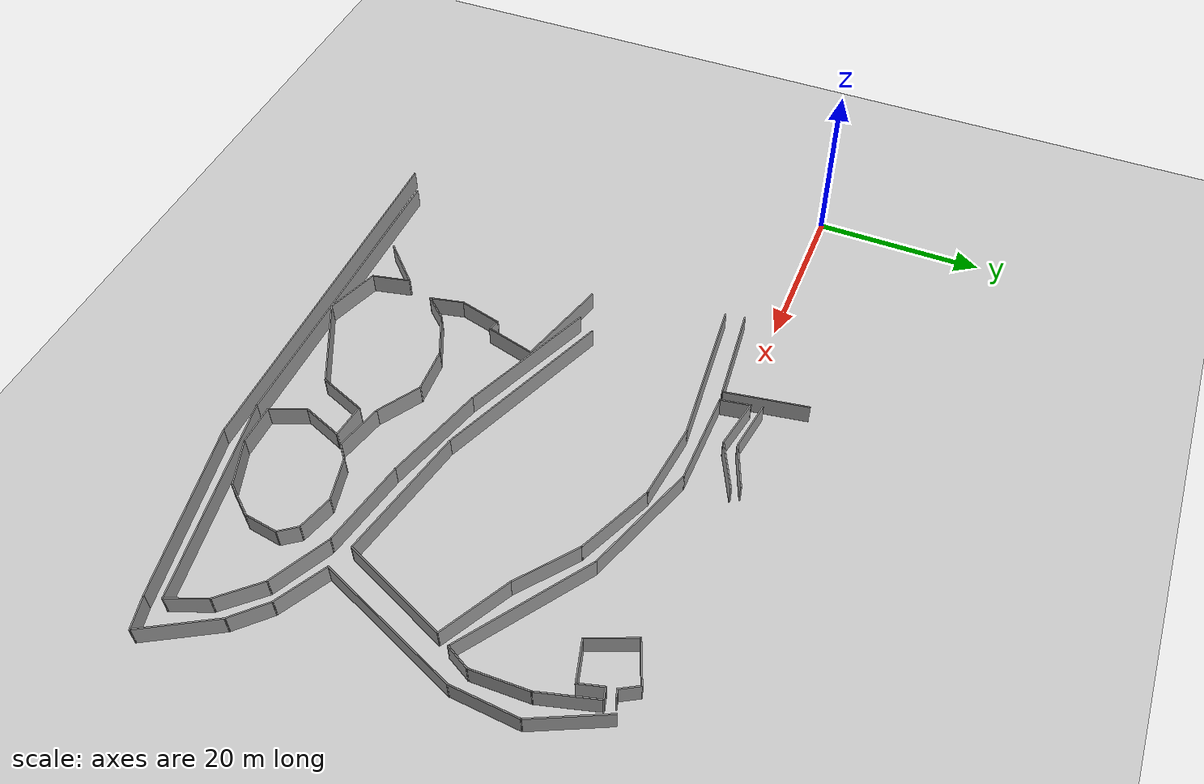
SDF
<sdf version="1.7">
 <world name="default">
  <model name="ground_plane">
   <static>1</static>
   <link name="link">
    <collision name="collision">
     <geometry><plane><normal>0 0 1</normal><size>100 100</size></plane></geometry>
     <surface><friction><ode><mu>100</mu><mu2>50</mu2></ode></friction></surface>
    </collision>
    <visual name="visual">
     <cast_shadows>0</cast_shadows>
     <geometry><plane><normal>0 0 1</normal><size>100 100</size></plane></geometry>
     <material>
      <script><uri>file://media/materials/scripts/gazebo.material</uri><name>Gazebo/Grey</name></script>
     </material>
    </visual>
   </link>
  </model>
  <model name="final_max_v1">
   <pose>-2.52311 0.689104 0 0 -0 0</pose>
   <link name="Wall_12">
    <collision name="Wall_12_Collision">
     <geometry><box><size>4.71285 0.15 2.5</size></box></geometry>
     <pose>0 0 1.25 0 -0 0</pose>
    </collision>
    <visual name="Wall_12_Visual">
     <pose>0 0 1.25 0 -0 0</pose>
     <geometry><box><size>4.71285 0.15 2.5</size></box></geometry>
     <material>
      <script><uri>file://media/materials/scripts/gazebo.material</uri><name>Gazebo/Grey</name></script>
      <ambient>1 1 1 1</ambient>
     </material>
     <meta><layer>0</layer></meta>
    </visual>
    <pose>33.7028 -45.8078 0 0 -0 -1.36194</pose>
   </link>
   <link name="Wall_13">
    <collision name="Wall_13_Collision">
     <geometry><box><size>6.84861 0.15 2.5</size></box></geometry>
     <pose>0 0 1.25 0 -0 0</pose>
    </collision>
    <visual name="Wall_13_Visual">
     <pose>0 0 1.25 0 -0 0</pose>
     <geometry><box><size>6.84861 0.15 2.5</size></box></geometry>
     <material>
      <script><uri>file://media/materials/scripts/gazebo.material</uri><name>Gazebo/Grey</name></script>
      <ambient>1 1 1 1</ambient>
     </material>
     <meta><layer>0</layer></meta>
    </visual>
    <pose>37.3584 -49.0831 0 0 -0 -0.316824</pose>
   </link>
   <link name="Wall_131">
    <collision name="Wall_131_Collision">
     <geometry><box><size>16.551 0.15 2.5</size></box></geometry>
     <pose>0 0 1.25 0 -0 0</pose>
    </collision>
    <visual name="Wall_131_Visual">
     <pose>0 0 1.25 0 -0 0</pose>
     <geometry><box><size>16.551 0.15 2.5</size></box></geometry>
     <material>
      <script><uri>file://media/materials/scripts/gazebo.material</uri><name>Gazebo/Grey</name></script>
      <ambient>1 1 1 1</ambient>
     </material>
     <meta><layer>0</layer></meta>
    </visual>
    <pose>61.4597 -29.6539 0 0 -0 2.9497</pose>
   </link>
   <link name="Wall_132">
    <collision name="Wall_132_Collision">
     <geometry><box><size>22.4626 0.15 2.5</size></box></geometry>
     <pose>0 0 1.25 0 -0 0</pose>
    </collision>
    <visual name="Wall_132_Visual">
     <pose>0 0 1.25 0 -0 0</pose>
     <geometry><box><size>22.4626 0.15 2.5</size></box></geometry>
     <material>
      <script><uri>file://media/materials/scripts/gazebo.material</uri><name>Gazebo/Grey</name></script>
      <ambient>1 1 1 1</ambient>
     </material>
     <meta><layer>0</layer></meta>
    </visual>
    <pose>43.0137 -24.0419 0 0 -0 2.77027</pose>
   </link>
   <link name="Wall_135">
    <collision name="Wall_135_Collision">
     <geometry><box><size>18.5413 0.15 2.5</size></box></geometry>
     <pose>0 0 1.25 0 -0 0</pose>
    </collision>
    <visual name="Wall_135_Visual">
     <pose>0 0 1.25 0 -0 0</pose>
     <geometry><box><size>18.5413 0.15 2.5</size></box></geometry>
     <material>
      <script><uri>file://media/materials/scripts/gazebo.material</uri><name>Gazebo/Grey</name></script>
      <ambient>1 1 1 1</ambient>
     </material>
     <meta><layer>0</layer></meta>
    </visual>
    <pose>33.3077 -5.59592 0 0 -0 0.095189</pose>
   </link>
   <link name="Wall_136">
    <collision name="Wall_136_Collision">
     <geometry><box><size>9.49695 0.15 2.5</size></box></geometry>
     <pose>0 0 1.25 0 -0 0</pose>
    </collision>
    <visual name="Wall_136_Visual">
     <pose>0 0 1.25 0 -0 0</pose>
     <geometry><box><size>9.49695 0.15 2.5</size></box></geometry>
     <material>
      <script><uri>file://media/materials/scripts/gazebo.material</uri><name>Gazebo/Grey</name></script>
      <ambient>1 1 1 1</ambient>
     </material>
     <meta><layer>0</layer></meta>
    </visual>
    <pose>47.1077 -5.22792 0 0 -0 -0.108483</pose>
   </link>
   <link name="Wall_137">
    <collision name="Wall_137_Collision">
     <geometry><box><size>9.83843 0.15 2.5</size></box></geometry>
     <pose>0 0 1.25 0 -0 0</pose>
    </collision>
    <visual name="Wall_137_Visual">
     <pose>0 0 1.25 0 -0 0</pose>
     <geometry><box><size>9.83843 0.15 2.5</size></box></geometry>
     <material>
      <script><uri>file://media/materials/scripts/gazebo.material</uri><name>Gazebo/Grey</name></script>
      <ambient>1 1 1 1</ambient>
     </material>
     <meta><layer>0</layer></meta>
    </visual>
    <pose>56.2157 -7.61992 0 0 -0 -0.399904</pose>
   </link>
   <link name="Wall_138">
    <collision name="Wall_138_Collision">
     <geometry><box><size>8.35659 0.15 2.5</size></box></geometry>
     <pose>0 0 1.25 0 -0 0</pose>
    </collision>
    <visual name="Wall_138_Visual">
     <pose>0 0 1.25 0 -0 0</pose>
     <geometry><box><size>8.35659 0.15 2.5</size></box></geometry>
     <material>
      <script><uri>file://media/materials/scripts/gazebo.material</uri><name>Gazebo/Grey</name></script>
      <ambient>1 1 1 1</ambient>
     </material>
     <meta><layer>0</layer></meta>
    </visual>
    <pose>63.9437 -11.9899 0 0 -0 -0.650227</pose>
   </link>
   <link name="Wall_139">
    <collision name="Wall_139_Collision">
     <geometry><box><size>9.07969 0.15 2.5</size></box></geometry>
     <pose>0 0 1.25 0 -0 0</pose>
    </collision>
    <visual name="Wall_139_Visual">
     <pose>0 0 1.25 0 -0 0</pose>
     <geometry><box><size>9.07969 0.15 2.5</size></box></geometry>
     <material>
      <script><uri>file://media/materials/scripts/gazebo.material</uri><name>Gazebo/Grey</name></script>
      <ambient>1 1 1 1</ambient>
     </material>
     <meta><layer>0</layer></meta>
    </visual>
    <pose>71.1657 -16.5439 0 0 -0 -0.482079</pose>
   </link>
   <link name="Wall_14">
    <collision name="Wall_14_Collision">
     <geometry><box><size>11.6765 0.15 2.5</size></box></geometry>
     <pose>0 0 1.25 0 -0 0</pose>
    </collision>
    <visual name="Wall_14_Visual">
     <pose>0 0 1.25 0 -0 0</pose>
     <geometry><box><size>11.6765 0.15 2.5</size></box></geometry>
     <material>
      <script><uri>file://media/materials/scripts/gazebo.material</uri><name>Gazebo/Grey</name></script>
      <ambient>1 1 1 1</ambient>
     </material>
     <meta><layer>0</layer></meta>
    </visual>
    <pose>45.7063 -47.5701 0 0 -0 0.459599</pose>
   </link>
   <link name="Wall_140">
    <collision name="Wall_140_Collision">
     <geometry><box><size>13.9469 0.15 2.5</size></box></geometry>
     <pose>0 0 1.25 0 -0 0</pose>
    </collision>
    <visual name="Wall_140_Visual">
     <pose>0 0 1.25 0 -0 0</pose>
     <geometry><box><size>13.9469 0.15 2.5</size></box></geometry>
     <material>
      <script><uri>file://media/materials/scripts/gazebo.material</uri><name>Gazebo/Grey</name></script>
      <ambient>1 1 1 1</ambient>
     </material>
     <meta><layer>0</layer></meta>
    </visual>
    <pose>72.3157 -24.9159 0 0 -0 -1.9897</pose>
   </link>
   <link name="Wall_15">
    <collision name="Wall_15_Collision">
     <geometry><box><size>6.09874 0.15 2.5</size></box></geometry>
     <pose>0 0 1.25 0 -0 0</pose>
    </collision>
    <visual name="Wall_15_Visual">
     <pose>0 0 1.25 0 -0 0</pose>
     <geometry><box><size>6.09874 0.15 2.5</size></box></geometry>
     <material>
      <script><uri>file://media/materials/scripts/gazebo.material</uri><name>Gazebo/Grey</name></script>
      <ambient>1 1 1 1</ambient>
     </material>
     <meta><layer>0</layer></meta>
    </visual>
    <pose>51.9671 -42.2484 0 0 -0 1.19355</pose>
   </link>
   <link name="Wall_16">
    <collision name="Wall_16_Collision">
     <geometry><box><size>4.34473 0.15 2.5</size></box></geometry>
     <pose>0 0 1.25 0 -0 0</pose>
    </collision>
    <visual name="Wall_16_Visual">
     <pose>0 0 1.25 0 -0 0</pose>
     <geometry><box><size>4.34473 0.15 2.5</size></box></geometry>
     <material>
      <script><uri>file://media/materials/scripts/gazebo.material</uri><name>Gazebo/Grey</name></script>
      <ambient>1 1 1 1</ambient>
     </material>
     <meta><layer>0</layer></meta>
    </visual>
    <pose>55.1497 -39.6918 0 0 -0 -0.099669</pose>
   </link>
   <link name="Wall_17">
    <collision name="Wall_17_Collision">
     <geometry><box><size>5.3044 0.15 2.5</size></box></geometry>
     <pose>0 0 1.25 0 -0 0</pose>
    </collision>
    <visual name="Wall_17_Visual">
     <pose>0 0 1.25 0 -0 0</pose>
     <geometry><box><size>5.3044 0.15 2.5</size></box></geometry>
     <material>
      <script><uri>file://media/materials/scripts/gazebo.material</uri><name>Gazebo/Grey</name></script>
      <ambient>1 1 1 1</ambient>
     </material>
     <meta><layer>0</layer></meta>
    </visual>
    <pose>56.2976 -42.3005 0 0 -0 -1.94378</pose>
   </link>
   <link name="Wall_18">
    <collision name="Wall_18_Collision">
     <geometry><box><size>4.54873 0.15 2.5</size></box></geometry>
     <pose>0 0 1.25 0 -0 0</pose>
    </collision>
    <visual name="Wall_18_Visual">
     <pose>0 0 1.25 0 -0 0</pose>
     <geometry><box><size>4.54873 0.15 2.5</size></box></geometry>
     <material>
      <script><uri>file://media/materials/scripts/gazebo.material</uri><name>Gazebo/Grey</name></script>
      <ambient>1 1 1 1</ambient>
     </material>
     <meta><layer>0</layer></meta>
    </visual>
    <pose>56.1932 -46.7353 0 0 -0 -1.18148</pose>
   </link>
   <link name="Wall_21">
    <collision name="Wall_21_Collision">
     <geometry><box><size>4.95 0.15 2.5</size></box></geometry>
     <pose>0 0 1.25 0 -0 0</pose>
    </collision>
    <visual name="Wall_21_Visual">
     <pose>0 0 1.25 0 -0 0</pose>
     <geometry><box><size>4.95 0.15 2.5</size></box></geometry>
     <material>
      <script><uri>file://media/materials/scripts/gazebo.material</uri><name>Gazebo/Grey</name></script>
      <ambient>1 1 1 1</ambient>
     </material>
     <meta><layer>0</layer></meta>
    </visual>
    <pose>59.428 -48.7701 0 0 -0 0</pose>
   </link>
   <link name="Wall_22">
    <collision name="Wall_22_Collision">
     <geometry><box><size>6.02507 0.15 2.5</size></box></geometry>
     <pose>0 0 1.25 0 -0 0</pose>
    </collision>
    <visual name="Wall_22_Visual">
     <pose>0 0 1.25 0 -0 0</pose>
     <geometry><box><size>6.02507 0.15 2.5</size></box></geometry>
     <material>
      <script><uri>file://media/materials/scripts/gazebo.material</uri><name>Gazebo/Grey</name></script>
      <ambient>1 1 1 1</ambient>
     </material>
     <meta><layer>0</layer></meta>
    </visual>
    <pose>64.5932 -47.7788 0 0 -0 0.344219</pose>
   </link>
   <link name="Wall_23">
    <collision name="Wall_23_Collision">
     <geometry><box><size>4.59918 0.15 2.5</size></box></geometry>
     <pose>0 0 1.25 0 -0 0</pose>
    </collision>
    <visual name="Wall_23_Visual">
     <pose>0 0 1.25 0 -0 0</pose>
     <geometry><box><size>4.59918 0.15 2.5</size></box></geometry>
     <material>
      <script><uri>file://media/materials/scripts/gazebo.material</uri><name>Gazebo/Grey</name></script>
      <ambient>1 1 1 1</ambient>
     </material>
     <meta><layer>0</layer></meta>
    </visual>
    <pose>68.7671 -45.0658 0 0 -0 0.885067</pose>
   </link>
   <link name="Wall_233">
    <collision name="Wall_233_Collision">
     <geometry><box><size>12.0422 0.15 2.5</size></box></geometry>
     <pose>0 0 1.25 0 -0 0</pose>
    </collision>
    <visual name="Wall_233_Visual">
     <pose>0 0 1.25 0 -0 0</pose>
     <geometry><box><size>12.0422 0.15 2.5</size></box></geometry>
     <material>
      <script><uri>file://media/materials/scripts/gazebo.material</uri><name>Gazebo/Grey</name></script>
      <ambient>1 1 1 1</ambient>
     </material>
     <meta><layer>0</layer></meta>
    </visual>
    <pose>29.7422 -3.55323 0 0 -0 0.105489</pose>
   </link>
   <link name="Wall_234">
    <collision name="Wall_234_Collision">
     <geometry><box><size>10.0086 0.15 2.5</size></box></geometry>
     <pose>0 0 1.25 0 -0 0</pose>
    </collision>
    <visual name="Wall_234_Visual">
     <pose>0 0 1.25 0 -0 0</pose>
     <geometry><box><size>10.0086 0.15 2.5</size></box></geometry>
     <material>
      <script><uri>file://media/materials/scripts/gazebo.material</uri><name>Gazebo/Grey</name></script>
      <ambient>1 1 1 1</ambient>
     </material>
     <meta><layer>0</layer></meta>
    </visual>
    <pose>34.8901 1.94242 0 0 -0 1.72666</pose>
   </link>
   <link name="Wall_24">
    <collision name="Wall_24_Collision">
     <geometry><box><size>4.16434 0.15 2.5</size></box></geometry>
     <pose>0 0 1.25 0 -0 0</pose>
    </collision>
    <visual name="Wall_24_Visual">
     <pose>0 0 1.25 0 -0 0</pose>
     <geometry><box><size>4.16434 0.15 2.5</size></box></geometry>
     <material>
      <script><uri>file://media/materials/scripts/gazebo.material</uri><name>Gazebo/Grey</name></script>
      <ambient>1 1 1 1</ambient>
     </material>
     <meta><layer>0</layer></meta>
    </visual>
    <pose>70.4889 -41.3614 0 0 -0 1.41419</pose>
   </link>
   <link name="Wall_25">
    <collision name="Wall_25_Collision">
     <geometry><box><size>2.6127 0.15 2.5</size></box></geometry>
     <pose>0 0 1.25 0 -0 0</pose>
    </collision>
    <visual name="Wall_25_Visual">
     <pose>0 0 1.25 0 -0 0</pose>
     <geometry><box><size>2.6127 0.15 2.5</size></box></geometry>
     <material>
      <script><uri>file://media/materials/scripts/gazebo.material</uri><name>Gazebo/Grey</name></script>
      <ambient>1 1 1 1</ambient>
     </material>
     <meta><layer>0</layer></meta>
    </visual>
    <pose>70.0715 -38.3875 0 0 -0 2.20582</pose>
   </link>
   <link name="Wall_26">
    <collision name="Wall_26_Collision">
     <geometry><box><size>4.47886 0.15 2.5</size></box></geometry>
     <pose>0 0 1.25 0 -0 0</pose>
    </collision>
    <visual name="Wall_26_Visual">
     <pose>0 0 1.25 0 -0 0</pose>
     <geometry><box><size>4.47886 0.15 2.5</size></box></geometry>
     <material>
      <script><uri>file://media/materials/scripts/gazebo.material</uri><name>Gazebo/Grey</name></script>
      <ambient>1 1 1 1</ambient>
     </material>
     <meta><layer>0</layer></meta>
    </visual>
    <pose>67.2541 -36.8223 0 0 -0 2.87323</pose>
   </link>
   <link name="Wall_27">
    <collision name="Wall_27_Collision">
     <geometry><box><size>5.51555 0.15 2.5</size></box></geometry>
     <pose>0 0 1.25 0 -0 0</pose>
    </collision>
    <visual name="Wall_27_Visual">
     <pose>0 0 1.25 0 -0 0</pose>
     <geometry><box><size>5.51555 0.15 2.5</size></box></geometry>
     <material>
      <script><uri>file://media/materials/scripts/gazebo.material</uri><name>Gazebo/Grey</name></script>
      <ambient>1 1 1 1</ambient>
     </material>
     <meta><layer>0</layer></meta>
    </visual>
    <pose>62.5584 -36.8745 0 0 -0 -2.90605</pose>
   </link>
   <link name="Wall_28">
    <collision name="Wall_28_Collision">
     <geometry><box><size>2.30119 0.15 2.5</size></box></geometry>
     <pose>0 0 1.25 0 -0 0</pose>
    </collision>
    <visual name="Wall_28_Visual">
     <pose>0 0 1.25 0 -0 0</pose>
     <geometry><box><size>2.30119 0.15 2.5</size></box></geometry>
     <material>
      <script><uri>file://media/materials/scripts/gazebo.material</uri><name>Gazebo/Grey</name></script>
      <ambient>1 1 1 1</ambient>
     </material>
     <meta><layer>0</layer></meta>
    </visual>
    <pose>59.1149 -38.1788 0 0 -0 -2.45928</pose>
   </link>
   <link name="Wall_29">
    <collision name="Wall_29_Collision">
     <geometry><box><size>5.94577 0.15 2.5</size></box></geometry>
     <pose>0 0 1.25 0 -0 0</pose>
    </collision>
    <visual name="Wall_29_Visual">
     <pose>0 0 1.25 0 -0 0</pose>
     <geometry><box><size>5.94577 0.15 2.5</size></box></geometry>
     <material>
      <script><uri>file://media/materials/scripts/gazebo.material</uri><name>Gazebo/Grey</name></script>
      <ambient>1 1 1 1</ambient>
     </material>
     <meta><layer>0</layer></meta>
    </visual>
    <pose>55.4628 -38.1788 0 0 -0 2.90535</pose>
   </link>
   <link name="Wall_300">
    <collision name="Wall_300_Collision">
     <geometry><box><size>11.627 0.15 2.5</size></box></geometry>
     <pose>0 0 1.25 0 -0 0</pose>
    </collision>
    <visual name="Wall_300_Visual">
     <pose>0 0 1.25 0 -0 0</pose>
     <geometry><box><size>11.627 0.15 2.5</size></box></geometry>
     <material>
      <script><uri>file://media/materials/scripts/gazebo.material</uri><name>Gazebo/Grey</name></script>
      <ambient>1 1 1 1</ambient>
     </material>
     <meta><layer>0</layer></meta>
    </visual>
    <pose>42.5993 -2.85617 0 0 -0 -0.009391</pose>
   </link>
   <link name="Wall_301">
    <collision name="Wall_301_Collision">
     <geometry><box><size>14.3248 0.15 2.5</size></box></geometry>
     <pose>0 0 1.25 0 -0 0</pose>
    </collision>
    <visual name="Wall_301_Visual">
     <pose>0 0 1.25 0 -0 0</pose>
     <geometry><box><size>14.3248 0.15 2.5</size></box></geometry>
     <material>
      <script><uri>file://media/materials/scripts/gazebo.material</uri><name>Gazebo/Grey</name></script>
      <ambient>1 1 1 1</ambient>
     </material>
     <meta><layer>0</layer></meta>
    </visual>
    <pose>55.0472 -5.19275 0 0 -0 -0.327923</pose>
   </link>
   <link name="Wall_302">
    <collision name="Wall_302_Collision">
     <geometry><box><size>17.3014 0.15 2.5</size></box></geometry>
     <pose>0 0 1.25 0 -0 0</pose>
    </collision>
    <visual name="Wall_302_Visual">
     <pose>0 0 1.25 0 -0 0</pose>
     <geometry><box><size>17.3014 0.15 2.5</size></box></geometry>
     <material>
      <script><uri>file://media/materials/scripts/gazebo.material</uri><name>Gazebo/Grey</name></script>
      <ambient>1 1 1 1</ambient>
     </material>
     <meta><layer>0</layer></meta>
    </visual>
    <pose>68.8817 -12.2483 0 0 -0 -0.59024</pose>
   </link>
   <link name="Wall_303">
    <collision name="Wall_303_Collision">
     <geometry><box><size>3.26378 0.15 2.5</size></box></geometry>
     <pose>0 0 1.25 0 -0 0</pose>
    </collision>
    <visual name="Wall_303_Visual">
     <pose>0 0 1.25 0 -0 0</pose>
     <geometry><box><size>3.26378 0.15 2.5</size></box></geometry>
     <material>
      <script><uri>file://media/materials/scripts/gazebo.material</uri><name>Gazebo/Grey</name></script>
      <ambient>1 1 1 1</ambient>
     </material>
     <meta><layer>0</layer></meta>
    </visual>
    <pose>76.7485 -15.6525 0 0 -0 1.07401</pose>
   </link>
   <link name="Wall_304">
    <collision name="Wall_304_Collision">
     <geometry><box><size>6.84577 0.15 2.5</size></box></geometry>
     <pose>0 0 1.25 0 -0 0</pose>
    </collision>
    <visual name="Wall_304_Visual">
     <pose>0 0 1.25 0 -0 0</pose>
     <geometry><box><size>6.84577 0.15 2.5</size></box></geometry>
     <material>
      <script><uri>file://media/materials/scripts/gazebo.material</uri><name>Gazebo/Grey</name></script>
      <ambient>1 1 1 1</ambient>
     </material>
     <meta><layer>0</layer></meta>
    </visual>
    <pose>77.4382 -10.9364 0 0 -0 1.58642</pose>
   </link>
   <link name="Wall_309">
    <collision name="Wall_309_Collision">
     <geometry><box><size>3.61438 0.15 2.5</size></box></geometry>
     <pose>0 0 1.25 0 -0 0</pose>
    </collision>
    <visual name="Wall_309_Visual">
     <pose>0 0 1.25 0 -0 0</pose>
     <geometry><box><size>3.61438 0.15 2.5</size></box></geometry>
     <material>
      <script><uri>file://media/materials/scripts/gazebo.material</uri><name>Gazebo/Grey</name></script>
      <ambient>1 1 1 1</ambient>
     </material>
     <meta><layer>0</layer></meta>
    </visual>
    <pose>36.5953 -1.09059 0 0 -0 -1.41679</pose>
   </link>
   <link name="Wall_31">
    <collision name="Wall_31_Collision">
     <geometry><box><size>5.7693 0.15 2.5</size></box></geometry>
     <pose>0 0 1.25 0 -0 0</pose>
    </collision>
    <visual name="Wall_31_Visual">
     <pose>0 0 1.25 0 -0 0</pose>
     <geometry><box><size>5.7693 0.15 2.5</size></box></geometry>
     <material>
      <script><uri>file://media/materials/scripts/gazebo.material</uri><name>Gazebo/Grey</name></script>
      <ambient>1 1 1 1</ambient>
     </material>
     <meta><layer>0</layer></meta>
    </visual>
    <pose>50.2454 -36.0397 0 0 -0 2.5948</pose>
   </link>
   <link name="Wall_312">
    <collision name="Wall_312_Collision">
     <geometry><box><size>6.31592 0.15 2.5</size></box></geometry>
     <pose>0 0 1.25 0 -0 0</pose>
    </collision>
    <visual name="Wall_312_Visual">
     <pose>0 0 1.25 0 -0 0</pose>
     <geometry><box><size>6.31592 0.15 2.5</size></box></geometry>
     <material>
      <script><uri>file://media/materials/scripts/gazebo.material</uri><name>Gazebo/Grey</name></script>
      <ambient>1 1 1 1</ambient>
     </material>
     <meta><layer>0</layer></meta>
    </visual>
    <pose>39.3633 0.071902 0 0 -0 -0.179095</pose>
   </link>
   <link name="Wall_313">
    <collision name="Wall_313_Collision">
     <geometry><box><size>6.37091 0.15 2.5</size></box></geometry>
     <pose>0 0 1.25 0 -0 0</pose>
    </collision>
    <visual name="Wall_313_Visual">
     <pose>0 0 1.25 0 -0 0</pose>
     <geometry><box><size>6.37091 0.15 2.5</size></box></geometry>
     <material>
      <script><uri>file://media/materials/scripts/gazebo.material</uri><name>Gazebo/Grey</name></script>
      <ambient>1 1 1 1</ambient>
     </material>
     <meta><layer>0</layer></meta>
    </visual>
    <pose>45.1939 0.883513 0 0 -0 0.45281</pose>
   </link>
   <link name="Wall_316">
    <collision name="Wall_316_Collision">
     <geometry><box><size>5.79064 0.15 2.5</size></box></geometry>
     <pose>0 0 1.25 0 -0 0</pose>
    </collision>
    <visual name="Wall_316_Visual">
     <pose>0 0 1.25 0 -0 0</pose>
     <geometry><box><size>5.79064 0.15 2.5</size></box></geometry>
     <material>
      <script><uri>file://media/materials/scripts/gazebo.material</uri><name>Gazebo/Grey</name></script>
      <ambient>1 1 1 1</ambient>
     </material>
     <meta><layer>0</layer></meta>
    </visual>
    <pose>44.7516 2.11685 0 0 -0 -2.75911</pose>
   </link>
   <link name="Wall_317">
    <collision name="Wall_317_Collision">
     <geometry><box><size>6.23229 0.15 2.5</size></box></geometry>
     <pose>0 0 1.25 0 -0 0</pose>
    </collision>
    <visual name="Wall_317_Visual">
     <pose>0 0 1.25 0 -0 0</pose>
     <geometry><box><size>6.23229 0.15 2.5</size></box></geometry>
     <material>
      <script><uri>file://media/materials/scripts/gazebo.material</uri><name>Gazebo/Grey</name></script>
      <ambient>1 1 1 1</ambient>
     </material>
     <meta><layer>0</layer></meta>
    </visual>
    <pose>39.1276 1.51535 0 0 -0 2.9927</pose>
   </link>
   <link name="Wall_32">
    <collision name="Wall_32_Collision">
     <geometry><box><size>5.58511 0.15 2.5</size></box></geometry>
     <pose>0 0 1.25 0 -0 0</pose>
    </collision>
    <visual name="Wall_32_Visual">
     <pose>0 0 1.25 0 -0 0</pose>
     <geometry><box><size>5.58511 0.15 2.5</size></box></geometry>
     <material>
      <script><uri>file://media/materials/scripts/gazebo.material</uri><name>Gazebo/Grey</name></script>
      <ambient>1 1 1 1</ambient>
     </material>
     <meta><layer>0</layer></meta>
    </visual>
    <pose>45.1323 -34.7353 0 0 -0 -3.08396</pose>
   </link>
   <link name="Wall_33">
    <collision name="Wall_33_Collision">
     <geometry><box><size>5.89292 0.15 2.5</size></box></geometry>
     <pose>0 0 1.25 0 -0 0</pose>
    </collision>
    <visual name="Wall_33_Visual">
     <pose>0 0 1.25 0 -0 0</pose>
     <geometry><box><size>5.89292 0.15 2.5</size></box></geometry>
     <material>
      <script><uri>file://media/materials/scripts/gazebo.material</uri><name>Gazebo/Grey</name></script>
      <ambient>1 1 1 1</ambient>
     </material>
     <meta><layer>0</layer></meta>
    </visual>
    <pose>39.8106 -36.0918 0 0 -0 -2.71045</pose>
   </link>
   <link name="Wall_34">
    <collision name="Wall_34_Collision">
     <geometry><box><size>3.62495 0.15 2.5</size></box></geometry>
     <pose>0 0 1.25 0 -0 0</pose>
    </collision>
    <visual name="Wall_34_Visual">
     <pose>0 0 1.25 0 -0 0</pose>
     <geometry><box><size>3.62495 0.15 2.5</size></box></geometry>
     <material>
      <script><uri>file://media/materials/scripts/gazebo.material</uri><name>Gazebo/Grey</name></script>
      <ambient>1 1 1 1</ambient>
     </material>
     <meta><layer>0</layer></meta>
    </visual>
    <pose>36.0541 -38.5962 0 0 -0 -2.29245</pose>
   </link>
   <link name="Wall_35">
    <collision name="Wall_35_Collision">
     <geometry><box><size>4.20214 0.15 2.5</size></box></geometry>
     <pose>0 0 1.25 0 -0 0</pose>
    </collision>
    <visual name="Wall_35_Visual">
     <pose>0 0 1.25 0 -0 0</pose>
     <geometry><box><size>4.20214 0.15 2.5</size></box></geometry>
     <material>
      <script><uri>file://media/materials/scripts/gazebo.material</uri><name>Gazebo/Grey</name></script>
      <ambient>1 1 1 1</ambient>
     </material>
     <meta><layer>0</layer></meta>
    </visual>
    <pose>34.4889 -37.9179 0 0 -0 1.77829</pose>
   </link>
   <link name="Wall_36">
    <collision name="Wall_36_Collision">
     <geometry><box><size>5.43993 0.15 2.5</size></box></geometry>
     <pose>0 0 1.25 0 -0 0</pose>
    </collision>
    <visual name="Wall_36_Visual">
     <pose>0 0 1.25 0 -0 0</pose>
     <geometry><box><size>5.43993 0.15 2.5</size></box></geometry>
     <material>
      <script><uri>file://media/materials/scripts/gazebo.material</uri><name>Gazebo/Grey</name></script>
      <ambient>1 1 1 1</ambient>
     </material>
     <meta><layer>0</layer></meta>
    </visual>
    <pose>34.7497 -33.3788 0 0 -0 1.31147</pose>
   </link>
   <link name="Wall_37">
    <collision name="Wall_37_Collision">
     <geometry><box><size>1.5 0.15 2.5</size></box></geometry>
     <pose>0 0 1.25 0 -0 0</pose>
    </collision>
    <visual name="Wall_37_Visual">
     <pose>0 0 1.25 0 -0 0</pose>
     <geometry><box><size>1.5 0.15 2.5</size></box></geometry>
     <material>
      <script><uri>file://media/materials/scripts/gazebo.material</uri><name>Gazebo/Grey</name></script>
      <ambient>1 1 1 1</ambient>
     </material>
     <meta><layer>0</layer></meta>
    </visual>
    <pose>36.08 -30.997 0 0 -0 -0.261799</pose>
   </link>
   <link name="Wall_38">
    <collision name="Wall_38_Collision">
     <geometry><box><size>6.25 0.15 2.5</size></box></geometry>
     <pose>0 0 1.25 0 -0 0</pose>
    </collision>
    <visual name="Wall_38_Visual">
     <pose>0 0 1.25 0 -0 0</pose>
     <geometry><box><size>6.25 0.15 2.5</size></box></geometry>
     <material>
      <script><uri>file://media/materials/scripts/gazebo.material</uri><name>Gazebo/Grey</name></script>
      <ambient>1 1 1 1</ambient>
     </material>
     <meta><layer>0</layer></meta>
    </visual>
    <pose>37.5214 -28.2256 0 0 -0 1.309</pose>
   </link>
   <link name="Wall_39">
    <collision name="Wall_39_Collision">
     <geometry><box><size>11.75 0.15 2.5</size></box></geometry>
     <pose>0 0 1.25 0 -0 0</pose>
    </collision>
    <visual name="Wall_39_Visual">
     <pose>0 0 1.25 0 -0 0</pose>
     <geometry><box><size>11.75 0.15 2.5</size></box></geometry>
     <material>
      <script><uri>file://media/materials/scripts/gazebo.material</uri><name>Gazebo/Grey</name></script>
      <ambient>1 1 1 1</ambient>
     </material>
     <meta><layer>0</layer></meta>
    </visual>
    <pose>32.7084 -23.7784 0 0 -0 2.87979</pose>
   </link>
   <link name="Wall_46">
    <collision name="Wall_46_Collision">
     <geometry><box><size>17.2425 0.15 2.5</size></box></geometry>
     <pose>0 0 1.25 0 -0 0</pose>
    </collision>
    <visual name="Wall_46_Visual">
     <pose>0 0 1.25 0 -0 0</pose>
     <geometry><box><size>17.2425 0.15 2.5</size></box></geometry>
     <material>
      <script><uri>file://media/materials/scripts/gazebo.material</uri><name>Gazebo/Grey</name></script>
      <ambient>1 1 1 1</ambient>
     </material>
     <meta><layer>0</layer></meta>
    </visual>
    <pose>39.0939 -25.3075 0 0 -0 -0.380506</pose>
   </link>
   <link name="Wall_47">
    <collision name="Wall_47_Collision">
     <geometry><box><size>12.6045 0.15 2.5</size></box></geometry>
     <pose>0 0 1.25 0 -0 0</pose>
    </collision>
    <visual name="Wall_47_Visual">
     <pose>0 0 1.25 0 -0 0</pose>
     <geometry><box><size>12.6045 0.15 2.5</size></box></geometry>
     <material>
      <script><uri>file://media/materials/scripts/gazebo.material</uri><name>Gazebo/Grey</name></script>
      <ambient>1 1 1 1</ambient>
     </material>
     <meta><layer>0</layer></meta>
    </visual>
    <pose>53.0319 -30.1375 0 0 -0 -0.269167</pose>
   </link>
   <link name="Wall_48">
    <collision name="Wall_48_Collision">
     <geometry><box><size>10.8145 0.15 2.5</size></box></geometry>
     <pose>0 0 1.25 0 -0 0</pose>
    </collision>
    <visual name="Wall_48_Visual">
     <pose>0 0 1.25 0 -0 0</pose>
     <geometry><box><size>10.8145 0.15 2.5</size></box></geometry>
     <material>
      <script><uri>file://media/materials/scripts/gazebo.material</uri><name>Gazebo/Grey</name></script>
      <ambient>1 1 1 1</ambient>
     </material>
     <meta><layer>0</layer></meta>
    </visual>
    <pose>64.2789 -32.7595 0 0 -0 -0.182168</pose>
   </link>
   <link name="Wall_49">
    <collision name="Wall_49_Collision">
     <geometry><box><size>7.67954 0.15 2.5</size></box></geometry>
     <pose>0 0 1.25 0 -0 0</pose>
    </collision>
    <visual name="Wall_49_Visual">
     <pose>0 0 1.25 0 -0 0</pose>
     <geometry><box><size>7.67954 0.15 2.5</size></box></geometry>
     <material>
      <script><uri>file://media/materials/scripts/gazebo.material</uri><name>Gazebo/Grey</name></script>
      <ambient>1 1 1 1</ambient>
     </material>
     <meta><layer>0</layer></meta>
    </visual>
    <pose>72.9039 -35.3815 0 0 -0 -0.455451</pose>
   </link>
   <link name="Wall_50">
    <collision name="Wall_50_Collision">
     <geometry><box><size>5.81305 0.15 2.5</size></box></geometry>
     <pose>0 0 1.25 0 -0 0</pose>
    </collision>
    <visual name="Wall_50_Visual">
     <pose>0 0 1.25 0 -0 0</pose>
     <geometry><box><size>5.81305 0.15 2.5</size></box></geometry>
     <material>
      <script><uri>file://media/materials/scripts/gazebo.material</uri><name>Gazebo/Grey</name></script>
      <ambient>1 1 1 1</ambient>
     </material>
     <meta><layer>0</layer></meta>
    </visual>
    <pose>78.2169 -39.1075 0 0 -0 -0.819867</pose>
   </link>
   <link name="Wall_53">
    <collision name="Wall_53_Collision">
     <geometry><box><size>46.0835 0.15 2.5</size></box></geometry>
     <pose>0 0 1.25 0 -0 0</pose>
    </collision>
    <visual name="Wall_53_Visual">
     <pose>0 0 1.25 0 -0 0</pose>
     <geometry><box><size>46.0835 0.15 2.5</size></box></geometry>
     <material>
      <script><uri>file://media/materials/scripts/gazebo.material</uri><name>Gazebo/Grey</name></script>
      <ambient>1 1 1 1</ambient>
     </material>
     <meta><layer>0</layer></meta>
    </visual>
    <pose>38.4766 -51.8722 0 0 -0 0.008638</pose>
   </link>
   <link name="Wall_54">
    <collision name="Wall_54_Collision">
     <geometry><box><size>21.4718 0.15 2.5</size></box></geometry>
     <pose>0 0 1.25 0 -0 0</pose>
    </collision>
    <visual name="Wall_54_Visual">
     <pose>0 0 1.25 0 -0 0</pose>
     <geometry><box><size>21.4718 0.15 2.5</size></box></geometry>
     <material>
      <script><uri>file://media/materials/scripts/gazebo.material</uri><name>Gazebo/Grey</name></script>
      <ambient>1 1 1 1</ambient>
     </material>
     <meta><layer>0</layer></meta>
    </visual>
    <pose>71.8997 -49.5997 0 0 -0 0.195805</pose>
   </link>
   <link name="Wall_58">
    <collision name="Wall_58_Collision">
     <geometry><box><size>38.75 0.15 2.5</size></box></geometry>
     <pose>0 0 1.25 0 -0 0</pose>
    </collision>
    <visual name="Wall_58_Visual">
     <pose>0 0 1.25 0 -0 0</pose>
     <geometry><box><size>38.75 0.15 2.5</size></box></geometry>
     <material>
      <script><uri>file://media/materials/scripts/gazebo.material</uri><name>Gazebo/Grey</name></script>
      <ambient>1 1 1 1</ambient>
     </material>
     <meta><layer>0</layer></meta>
    </visual>
    <pose>37.7303 -50.1877 0 0 -0 0</pose>
   </link>
   <link name="Wall_60">
    <collision name="Wall_60_Collision">
     <geometry><box><size>25.436 0.15 2.5</size></box></geometry>
     <pose>0 0 1.25 0 -0 0</pose>
    </collision>
    <visual name="Wall_60_Visual">
     <pose>0 0 1.25 0 -0 0</pose>
     <geometry><box><size>25.436 0.15 2.5</size></box></geometry>
     <material>
      <script><uri>file://media/materials/scripts/gazebo.material</uri><name>Gazebo/Grey</name></script>
      <ambient>1 1 1 1</ambient>
     </material>
     <meta><layer>0</layer></meta>
    </visual>
    <pose>69.4626 -47.8893 0 0 -0 0.182813</pose>
   </link>
   <link name="Wall_62">
    <collision name="Wall_62_Collision">
     <geometry><box><size>4.8961 0.15 2.5</size></box></geometry>
     <pose>0 0 1.25 0 -0 0</pose>
    </collision>
    <visual name="Wall_62_Visual">
     <pose>0 0 1.25 0 -0 0</pose>
     <geometry><box><size>4.8961 0.15 2.5</size></box></geometry>
     <material>
      <script><uri>file://media/materials/scripts/gazebo.material</uri><name>Gazebo/Grey</name></script>
      <ambient>1 1 1 1</ambient>
     </material>
     <meta><layer>0</layer></meta>
    </visual>
    <pose>81.0219 -43.3842 0 0 -0 1.94751</pose>
   </link>
   <link name="Wall_65">
    <collision name="Wall_65_Collision">
     <geometry><box><size>4 0.15 2.5</size></box></geometry>
     <pose>0 0 1.25 0 -0 0</pose>
    </collision>
    <visual name="Wall_65_Visual">
     <pose>0 0 1.25 0 -0 0</pose>
     <geometry><box><size>4 0.15 2.5</size></box></geometry>
     <material>
      <script><uri>file://media/materials/scripts/gazebo.material</uri><name>Gazebo/Grey</name></script>
      <ambient>1 1 1 1</ambient>
     </material>
     <meta><layer>0</layer></meta>
    </visual>
    <pose>84.2164 -47.0273 0 0 -0 0.261799</pose>
   </link>
   <link name="Wall_66">
    <collision name="Wall_66_Collision">
     <geometry><box><size>9.25 0.15 2.5</size></box></geometry>
     <pose>0 0 1.25 0 -0 0</pose>
    </collision>
    <visual name="Wall_66_Visual">
     <pose>0 0 1.25 0 -0 0</pose>
     <geometry><box><size>9.25 0.15 2.5</size></box></geometry>
     <material>
      <script><uri>file://media/materials/scripts/gazebo.material</uri><name>Gazebo/Grey</name></script>
      <ambient>1 1 1 1</ambient>
     </material>
     <meta><layer>0</layer></meta>
    </visual>
    <pose>83.8008 -42.5887 0 0 -0 2.0944</pose>
   </link>
   <link name="Wall_67">
    <collision name="Wall_67_Collision">
     <geometry><box><size>4.91456 0.15 2.5</size></box></geometry>
     <pose>0 0 1.25 0 -0 0</pose>
    </collision>
    <visual name="Wall_67_Visual">
     <pose>0 0 1.25 0 -0 0</pose>
     <geometry><box><size>4.91456 0.15 2.5</size></box></geometry>
     <material>
      <script><uri>file://media/materials/scripts/gazebo.material</uri><name>Gazebo/Grey</name></script>
      <ambient>1 1 1 1</ambient>
     </material>
     <meta><layer>0</layer></meta>
    </visual>
    <pose>79.834 -36.9709 0 0 -0 2.36047</pose>
   </link>
   <link name="Wall_68">
    <collision name="Wall_68_Collision">
     <geometry><box><size>6.57108 0.15 2.5</size></box></geometry>
     <pose>0 0 1.25 0 -0 0</pose>
    </collision>
    <visual name="Wall_68_Visual">
     <pose>0 0 1.25 0 -0 0</pose>
     <geometry><box><size>6.57108 0.15 2.5</size></box></geometry>
     <material>
      <script><uri>file://media/materials/scripts/gazebo.material</uri><name>Gazebo/Grey</name></script>
      <ambient>1 1 1 1</ambient>
     </material>
     <meta><layer>0</layer></meta>
    </visual>
    <pose>75.3133 -33.7756 0 0 -0 2.64911</pose>
   </link>
   <link name="Wall_69">
    <collision name="Wall_69_Collision">
     <geometry><box><size>18.5927 0.15 2.5</size></box></geometry>
     <pose>0 0 1.25 0 -0 0</pose>
    </collision>
    <visual name="Wall_69_Visual">
     <pose>0 0 1.25 0 -0 0</pose>
     <geometry><box><size>18.5927 0.15 2.5</size></box></geometry>
     <material>
      <script><uri>file://media/materials/scripts/gazebo.material</uri><name>Gazebo/Grey</name></script>
      <ambient>1 1 1 1</ambient>
     </material>
     <meta><layer>0</layer></meta>
    </visual>
    <pose>76.082 -23.767 0 0 -0 1.17001</pose>
   </link>
   <link name="Wall_70">
    <collision name="Wall_70_Collision">
     <geometry><box><size>8.11035 0.15 2.5</size></box></geometry>
     <pose>0 0 1.25 0 -0 0</pose>
    </collision>
    <visual name="Wall_70_Visual">
     <pose>0 0 1.25 0 -0 0</pose>
     <geometry><box><size>8.11035 0.15 2.5</size></box></geometry>
     <material>
      <script><uri>file://media/materials/scripts/gazebo.material</uri><name>Gazebo/Grey</name></script>
      <ambient>1 1 1 1</ambient>
     </material>
     <meta><layer>0</layer></meta>
    </visual>
    <pose>79.997 -11.3089 0 0 -0 1.49097</pose>
   </link>
   <link name="Wall_700">
    <collision name="Wall_700_Collision">
     <geometry><box><size>9.04858 0.15 2.5</size></box></geometry>
     <pose>0 0 1.25 0 -0 0</pose>
    </collision>
    <visual name="Wall_700_Visual">
     <pose>0 0 1.25 0 -0 0</pose>
     <geometry><box><size>9.04858 0.15 2.5</size></box></geometry>
     <material>
      <script><uri>file://media/materials/scripts/gazebo.material</uri><name>Gazebo/Grey</name></script>
      <ambient>1 1 1 1</ambient>
     </material>
     <meta><layer>0</layer></meta>
    </visual>
    <pose>78.4044 -3.3229 0 0 -0 -1.1271</pose>
   </link>
   <link name="Wall_702">
    <collision name="Wall_702_Collision">
     <geometry><box><size>7 0.15 2.5</size></box></geometry>
     <pose>0 0 1.25 0 -0 0</pose>
    </collision>
    <visual name="Wall_702_Visual">
     <pose>0 0 1.25 0 -0 0</pose>
     <geometry><box><size>7 0.15 2.5</size></box></geometry>
     <material>
      <script><uri>file://media/materials/scripts/gazebo.material</uri><name>Gazebo/Grey</name></script>
      <ambient>1 1 1 1</ambient>
     </material>
     <meta><layer>0</layer></meta>
    </visual>
    <pose>76.4994 -4.28059 0 0 -0 1.8326</pose>
   </link>
   <link name="Wall_703">
    <collision name="Wall_703_Collision">
     <geometry><box><size>1.5 0.15 2.5</size></box></geometry>
     <pose>0 0 1.25 0 -0 0</pose>
    </collision>
    <visual name="Wall_703_Visual">
     <pose>0 0 1.25 0 -0 0</pose>
     <geometry><box><size>1.5 0.15 2.5</size></box></geometry>
     <material>
      <script><uri>file://media/materials/scripts/gazebo.material</uri><name>Gazebo/Grey</name></script>
      <ambient>1 1 1 1</ambient>
     </material>
     <meta><layer>0</layer></meta>
    </visual>
    <pose>74.961 -1.147 0 0 -0 -2.87979</pose>
   </link>
   <link name="Wall_704">
    <collision name="Wall_704_Collision">
     <geometry><box><size>3 0.15 2.5</size></box></geometry>
     <pose>0 0 1.25 0 -0 0</pose>
    </collision>
    <visual name="Wall_704_Visual">
     <pose>0 0 1.25 0 -0 0</pose>
     <geometry><box><size>3 0.15 2.5</size></box></geometry>
     <material>
      <script><uri>file://media/materials/scripts/gazebo.material</uri><name>Gazebo/Grey</name></script>
      <ambient>1 1 1 1</ambient>
     </material>
     <meta><layer>0</layer></meta>
    </visual>
    <pose>74.6778 -2.69814 0 0 -0 -1.309</pose>
   </link>
   <link name="Wall_705">
    <collision name="Wall_705_Collision">
     <geometry><box><size>5 0.15 2.5</size></box></geometry>
     <pose>0 0 1.25 0 -0 0</pose>
    </collision>
    <visual name="Wall_705_Visual">
     <pose>0 0 1.25 0 -0 0</pose>
     <geometry><box><size>5 0.15 2.5</size></box></geometry>
     <material>
      <script><uri>file://media/materials/scripts/gazebo.material</uri><name>Gazebo/Grey</name></script>
      <ambient>1 1 1 1</ambient>
     </material>
     <meta><layer>0</layer></meta>
    </visual>
    <pose>72.7042 -4.70223 0 0 -0 -2.87979</pose>
   </link>
   <link name="Wall_706">
    <collision name="Wall_706_Collision">
     <geometry><box><size>5.81611 0.15 2.5</size></box></geometry>
     <pose>0 0 1.25 0 -0 0</pose>
    </collision>
    <visual name="Wall_706_Visual">
     <pose>0 0 1.25 0 -0 0</pose>
     <geometry><box><size>5.81611 0.15 2.5</size></box></geometry>
     <material>
      <script><uri>file://media/materials/scripts/gazebo.material</uri><name>Gazebo/Grey</name></script>
      <ambient>1 1 1 1</ambient>
     </material>
     <meta><layer>0</layer></meta>
    </visual>
    <pose>69.2813 -2.71095 0 0 -0 1.9621</pose>
   </link>
   <link name="Wall_707">
    <collision name="Wall_707_Collision">
     <geometry><box><size>5.26143 0.15 2.5</size></box></geometry>
     <pose>0 0 1.25 0 -0 0</pose>
    </collision>
    <visual name="Wall_707_Visual">
     <pose>0 0 1.25 0 -0 0</pose>
     <geometry><box><size>5.26143 0.15 2.5</size></box></geometry>
     <material>
      <script><uri>file://media/materials/scripts/gazebo.material</uri><name>Gazebo/Grey</name></script>
      <ambient>1 1 1 1</ambient>
     </material>
     <meta><layer>0</layer></meta>
    </visual>
    <pose>70.5667 0.874644 0 0 -0 0.3879</pose>
   </link>
   <link name="Wall_708">
    <collision name="Wall_708_Collision">
     <geometry><box><size>2.5 0.15 2.5</size></box></geometry>
     <pose>0 0 1.25 0 -0 0</pose>
    </collision>
    <visual name="Wall_708_Visual">
     <pose>0 0 1.25 0 -0 0</pose>
     <geometry><box><size>2.5 0.15 2.5</size></box></geometry>
     <material>
      <script><uri>file://media/materials/scripts/gazebo.material</uri><name>Gazebo/Grey</name></script>
      <ambient>1 1 1 1</ambient>
     </material>
     <meta><layer>0</layer></meta>
    </visual>
    <pose>73.52 0.823752 0 0 -0 -1.0472</pose>
   </link>
   <link name="Wall_709">
    <collision name="Wall_709_Collision">
     <geometry><box><size>1 0.15 2.5</size></box></geometry>
     <pose>0 0 1.25 0 -0 0</pose>
    </collision>
    <visual name="Wall_709_Visual">
     <pose>0 0 1.25 0 -0 0</pose>
     <geometry><box><size>1 0.15 2.5</size></box></geometry>
     <material>
      <script><uri>file://media/materials/scripts/gazebo.material</uri><name>Gazebo/Grey</name></script>
      <ambient>1 1 1 1</ambient>
     </material>
     <meta><layer>0</layer></meta>
    </visual>
    <pose>74.518 -0.083829 0 0 -0 0.261799</pose>
   </link>
   <link name="Wall_9">
    <collision name="Wall_9_Collision">
     <geometry><box><size>6.59881 0.15 2.5</size></box></geometry>
     <pose>0 0 1.25 0 -0 0</pose>
    </collision>
    <visual name="Wall_9_Visual">
     <pose>0 0 1.25 0 -0 0</pose>
     <geometry><box><size>6.59881 0.15 2.5</size></box></geometry>
     <material>
      <script><uri>file://media/materials/scripts/gazebo.material</uri><name>Gazebo/Grey</name></script>
      <ambient>1 1 1 1</ambient>
     </material>
     <meta><layer>0</layer></meta>
    </visual>
    <pose>30.9498 -45.856 0 0 -0 0.785398</pose>
   </link>
   <static>1</static>
  </model>
 </world>
</sdf>
